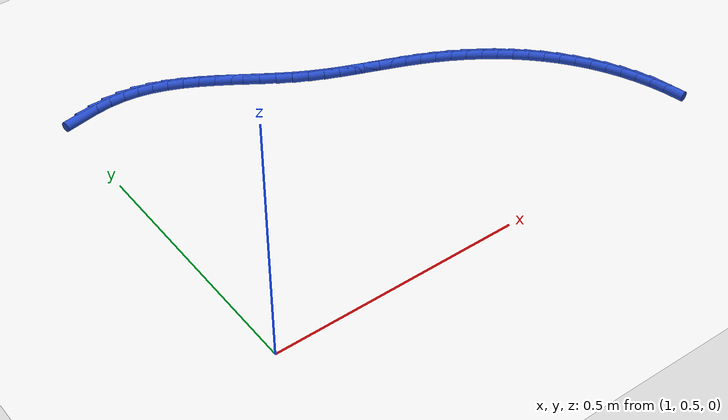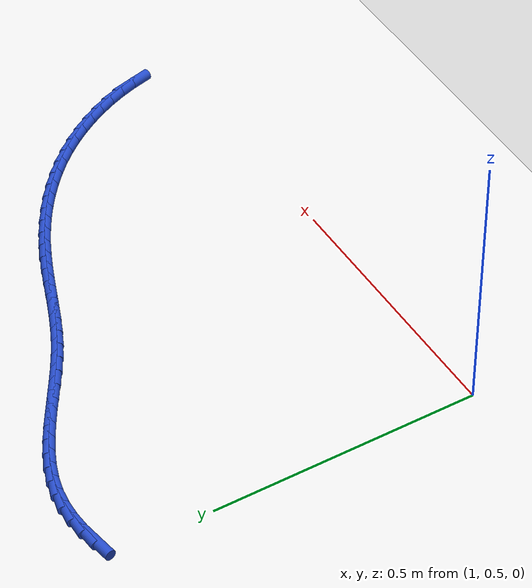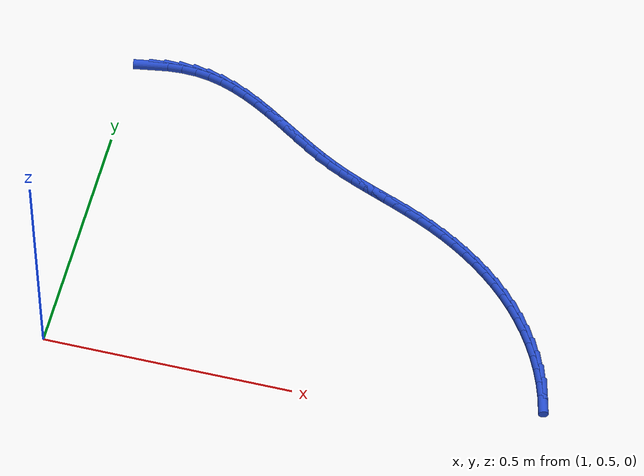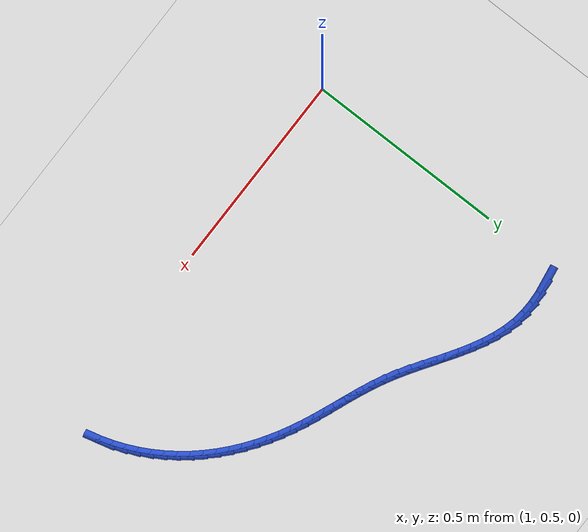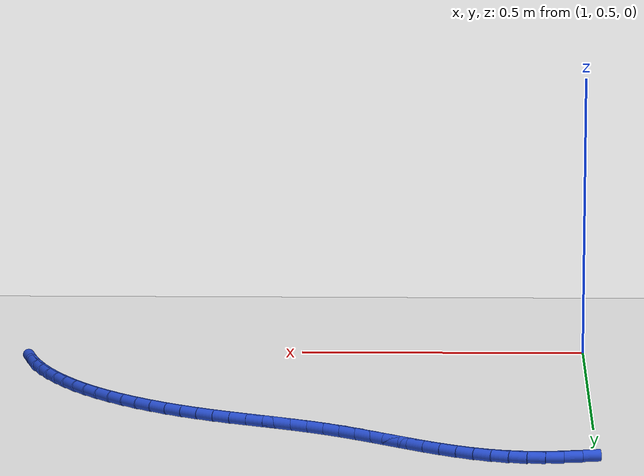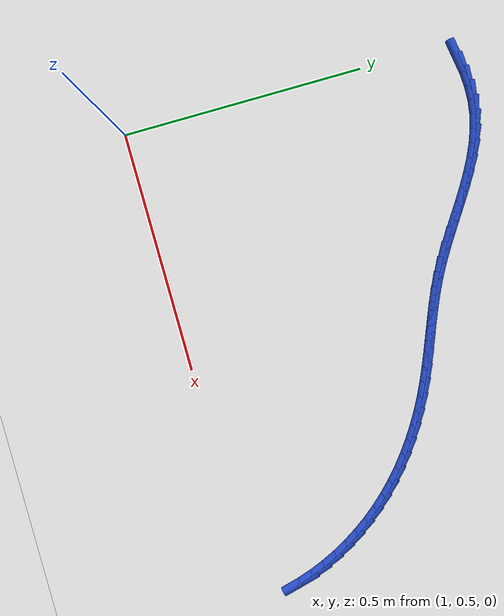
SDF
<sdf version="1.6">
 <world name="default">
  <model name="ground_plane">
   <static>1</static>
   <link name="link">
    <collision name="collision">
     <geometry><plane><normal>0 0 1</normal><size>100 100</size></plane></geometry>
     <surface><friction><ode><mu>100</mu><mu2>50</mu2></ode></friction></surface>
    </collision>
    <visual name="visual">
     <cast_shadows>0</cast_shadows>
     <geometry><plane><normal>0 0 1</normal><size>100 100</size></plane></geometry>
     <material>
      <script><uri>file://media/materials/scripts/gazebo.material</uri><name>Gazebo/WhiteGlow</name></script>
     </material>
    </visual>
   </link>
  </model>
  <model name="line">
   <link name="link_58">
    <pose>1.0345950340338022 1.1960302970071013 0.01 0 1.57 0.15751934321451455</pose>
    <collision name="collision">
     <geometry><cylinder><radius>0.01</radius><length>0.08</length></cylinder></geometry>
    </collision>
    <visual name="visual">
     <material>
      <script><name>Gazebo/Blue</name><uri>file://media/materials/scripts/gazebo.material</uri></script>
     </material>
     <geometry><cylinder><radius>0.01</radius><length>0.08</length></cylinder></geometry>
    </visual>
   </link>
   <link name="link_59">
    <pose>1.0651345947226571 1.2008810546248219 0.01 0 1.57 0.06669534960263131</pose>
    <collision name="collision">
     <geometry><cylinder><radius>0.01</radius><length>0.08</length></cylinder></geometry>
    </collision>
    <visual name="visual">
     <material>
      <script><name>Gazebo/Blue</name><uri>file://media/materials/scripts/gazebo.material</uri></script>
     </material>
     <geometry><cylinder><radius>0.01</radius><length>0.08</length></cylinder></geometry>
    </visual>
   </link>
   <link name="link_60">
    <pose>1.095475557222885 1.202907661582305 0.01 0 1.57 -0.03377364835423569</pose>
    <collision name="collision">
     <geometry><cylinder><radius>0.01</radius><length>0.08</length></cylinder></geometry>
    </collision>
    <visual name="visual">
     <material>
      <script><name>Gazebo/Blue</name><uri>file://media/materials/scripts/gazebo.material</uri></script>
     </material>
     <geometry><cylinder><radius>0.01</radius><length>0.08</length></cylinder></geometry>
    </visual>
   </link>
   <link name="link_61">
    <pose>1.1253937191837178 1.2018968317341083 0.01 0 1.57 -0.14431171110946056</pose>
    <collision name="collision">
     <geometry><cylinder><radius>0.01</radius><length>0.08</length></cylinder></geometry>
    </collision>
    <visual name="visual">
     <material>
      <script><name>Gazebo/Blue</name><uri>file://media/materials/scripts/gazebo.material</uri></script>
     </material>
     <geometry><cylinder><radius>0.01</radius><length>0.08</length></cylinder></geometry>
    </visual>
   </link>
   <link name="link_62">
    <pose>1.1546686072818466 1.1976425484047333 0.01 0 1.57 -0.2545763938784624</pose>
    <collision name="collision">
     <geometry><cylinder><radius>0.01</radius><length>0.08</length></cylinder></geometry>
    </collision>
    <visual name="visual">
     <material>
      <script><name>Gazebo/Blue</name><uri>file://media/materials/scripts/gazebo.material</uri></script>
     </material>
     <geometry><cylinder><radius>0.01</radius><length>0.08</length></cylinder></geometry>
    </visual>
   </link>
   <link name="link_63">
    <pose>1.1832202850649123 1.190212761407325 0.01 0 1.57 -0.3497358407447202</pose>
    <collision name="collision">
     <geometry><cylinder><radius>0.01</radius><length>0.08</length></cylinder></geometry>
    </collision>
    <visual name="visual">
     <material>
      <script><name>Gazebo/Blue</name><uri>file://media/materials/scripts/gazebo.material</uri></script>
     </material>
     <geometry><cylinder><radius>0.01</radius><length>0.08</length></cylinder></geometry>
    </visual>
   </link>
   <link name="link_64">
    <pose>1.2111488567032964 1.1800263967571685 0.01 0 1.57 -0.42779413349664697</pose>
    <collision name="collision">
     <geometry><cylinder><radius>0.01</radius><length>0.08</length></cylinder></geometry>
    </collision>
    <visual name="visual">
     <material>
      <script><name>Gazebo/Blue</name><uri>file://media/materials/scripts/gazebo.material</uri></script>
     </material>
     <geometry><cylinder><radius>0.01</radius><length>0.08</length></cylinder></geometry>
    </visual>
   </link>
   <link name="link_65">
    <pose>1.2385662084310867 1.1675253487525383 0.01 0 1.57 -0.4889259432721871</pose>
    <collision name="collision">
     <geometry><cylinder><radius>0.01</radius><length>0.08</length></cylinder></geometry>
    </collision>
    <visual name="visual">
     <material>
      <script><name>Gazebo/Blue</name><uri>file://media/materials/scripts/gazebo.material</uri></script>
     </material>
     <geometry><cylinder><radius>0.01</radius><length>0.08</length></cylinder></geometry>
    </visual>
   </link>
   <link name="link_66">
    <pose>1.265584226482372 1.1531515116917097 0.01 0 1.57 -0.5339686493828901</pose>
    <collision name="collision">
     <geometry><cylinder><radius>0.01</radius><length>0.08</length></cylinder></geometry>
    </collision>
    <visual name="visual">
     <material>
      <script><name>Gazebo/Blue</name><uri>file://media/materials/scripts/gazebo.material</uri></script>
     </material>
     <geometry><cylinder><radius>0.01</radius><length>0.08</length></cylinder></geometry>
    </visual>
   </link>
   <link name="link_67">
    <pose>1.2923147970912394 1.1373467798729577 0.01 0 1.57 -0.5639122370377647</pose>
    <collision name="collision">
     <geometry><cylinder><radius>0.01</radius><length>0.08</length></cylinder></geometry>
    </collision>
    <visual name="visual">
     <material>
      <script><name>Gazebo/Blue</name><uri>file://media/materials/scripts/gazebo.material</uri></script>
     </material>
     <geometry><cylinder><radius>0.01</radius><length>0.08</length></cylinder></geometry>
    </visual>
   </link>
   <link name="link_68">
    <pose>1.3188698064917777 1.1205530475945573 0.01 0 1.57 -0.5795918885365203</pose>
    <collision name="collision">
     <geometry><cylinder><radius>0.01</radius><length>0.08</length></cylinder></geometry>
    </collision>
    <visual name="visual">
     <material>
      <script><name>Gazebo/Blue</name><uri>file://media/materials/scripts/gazebo.material</uri></script>
     </material>
     <geometry><cylinder><radius>0.01</radius><length>0.08</length></cylinder></geometry>
    </visual>
   </link>
   <link name="link_69">
    <pose>1.3453611409180746 1.1032122091547836 0.01 0 1.57 -0.5815322048873945</pose>
    <collision name="collision">
     <geometry><cylinder><radius>0.01</radius><length>0.08</length></cylinder></geometry>
    </collision>
    <visual name="visual">
     <material>
      <script><name>Gazebo/Blue</name><uri>file://media/materials/scripts/gazebo.material</uri></script>
     </material>
     <geometry><cylinder><radius>0.01</radius><length>0.08</length></cylinder></geometry>
    </visual>
   </link>
   <link name="link_70">
    <pose>1.3719006866042183 1.0857661588519119 0.01 0 1.57 -0.5698868016549801</pose>
    <collision name="collision">
     <geometry><cylinder><radius>0.01</radius><length>0.08</length></cylinder></geometry>
    </collision>
    <visual name="visual">
     <material>
      <script><name>Gazebo/Blue</name><uri>file://media/materials/scripts/gazebo.material</uri></script>
     </material>
     <geometry><cylinder><radius>0.01</radius><length>0.08</length></cylinder></geometry>
    </visual>
   </link>
   <link name="link_71">
    <pose>1.3986003297842966 1.068656790984217 0.01 0 1.57 -0.5444394563425698</pose>
    <collision name="collision">
     <geometry><cylinder><radius>0.01</radius><length>0.08</length></cylinder></geometry>
    </collision>
    <visual name="visual">
     <material>
      <script><name>Gazebo/Blue</name><uri>file://media/materials/scripts/gazebo.material</uri></script>
     </material>
     <geometry><cylinder><radius>0.01</radius><length>0.08</length></cylinder></geometry>
    </visual>
   </link>
   <link name="link_72">
    <pose>1.4255719566923981 1.052325999849974 0.01 0 1.57 -0.5047392713394546</pose>
    <collision name="collision">
     <geometry><cylinder><radius>0.01</radius><length>0.08</length></cylinder></geometry>
    </collision>
    <visual name="visual">
     <material>
      <script><name>Gazebo/Blue</name><uri>file://media/materials/scripts/gazebo.material</uri></script>
     </material>
     <geometry><cylinder><radius>0.01</radius><length>0.08</length></cylinder></geometry>
    </visual>
   </link>
   <link name="link_73">
    <pose>1.4529267526491638 1.037213235554282 0.01 0 1.57 -0.4585980168633063</pose>
    <collision name="collision">
     <geometry><cylinder><radius>0.01</radius><length>0.08</length></cylinder></geometry>
    </collision>
    <visual name="visual">
     <material>
      <script><name>Gazebo/Blue</name><uri>file://media/materials/scripts/gazebo.material</uri></script>
     </material>
     <geometry><cylinder><radius>0.01</radius><length>0.08</length></cylinder></geometry>
    </visual>
   </link>
   <link name="link_74">
    <pose>1.4807020632485124 1.0235004576986149 0.01 0 1.57 -0.42192605350317947</pose>
    <collision name="collision">
     <geometry><cylinder><radius>0.01</radius><length>0.08</length></cylinder></geometry>
    </collision>
    <visual name="visual">
     <material>
      <script><name>Gazebo/Blue</name><uri>file://media/materials/scripts/gazebo.material</uri></script>
     </material>
     <geometry><cylinder><radius>0.01</radius><length>0.08</length></cylinder></geometry>
    </visual>
   </link>
   <link name="link_75">
    <pose>1.5087973780832349 1.010888900768964 0.01 0 1.57 -0.3969021513975742</pose>
    <collision name="collision">
     <geometry><cylinder><radius>0.01</radius><length>0.08</length></cylinder></geometry>
    </collision>
    <visual name="visual">
     <material>
      <script><name>Gazebo/Blue</name><uri>file://media/materials/scripts/gazebo.material</uri></script>
     </material>
     <geometry><cylinder><radius>0.01</radius><length>0.08</length></cylinder></geometry>
    </visual>
   </link>
   <link name="link_76">
    <pose>1.5370970962316524 0.9990271763023538 0.01 0 1.57 -0.3837778156022704</pose>
    <collision name="collision">
     <geometry><cylinder><radius>0.01</radius><length>0.08</length></cylinder></geometry>
    </collision>
    <visual name="visual">
     <material>
      <script><name>Gazebo/Blue</name><uri>file://media/materials/scripts/gazebo.material</uri></script>
     </material>
     <geometry><cylinder><radius>0.01</radius><length>0.08</length></cylinder></geometry>
    </visual>
   </link>
   <link name="link_77">
    <pose>1.5654856167720879 0.987563895835809 0.01 0 1.57 -0.38267886107966387</pose>
    <collision name="collision">
     <geometry><cylinder><radius>0.01</radius><length>0.08</length></cylinder></geometry>
    </collision>
    <visual name="visual">
     <material>
      <script><name>Gazebo/Blue</name><uri>file://media/materials/scripts/gazebo.material</uri></script>
     </material>
     <geometry><cylinder><radius>0.01</radius><length>0.08</length></cylinder></geometry>
    </visual>
   </link>
   <link name="link_78">
    <pose>1.5938473387828602 0.9761476709063533 0.01 0 1.57 -0.3936584936075167</pose>
    <collision name="collision">
     <geometry><cylinder><radius>0.01</radius><length>0.08</length></cylinder></geometry>
    </collision>
    <visual name="visual">
     <material>
      <script><name>Gazebo/Blue</name><uri>file://media/materials/scripts/gazebo.material</uri></script>
     </material>
     <geometry><cylinder><radius>0.01</radius><length>0.08</length></cylinder></geometry>
    </visual>
   </link>
   <link name="link_79">
    <pose>1.6220666613422914 0.9644271130510104 0.01 0 1.57 -0.4167009541719072</pose>
    <collision name="collision">
     <geometry><cylinder><radius>0.01</radius><length>0.08</length></cylinder></geometry>
    </collision>
    <visual name="visual">
     <material>
      <script><name>Gazebo/Blue</name><uri>file://media/materials/scripts/gazebo.material</uri></script>
     </material>
     <geometry><cylinder><radius>0.01</radius><length>0.08</length></cylinder></geometry>
    </visual>
   </link>
   <link name="link_80">
    <pose>1.6500279835287033 0.9520508338068054 0.01 0 1.57 -0.45145092223446137</pose>
    <collision name="collision">
     <geometry><cylinder><radius>0.01</radius><length>0.08</length></cylinder></geometry>
    </collision>
    <visual name="visual">
     <material>
      <script><name>Gazebo/Blue</name><uri>file://media/materials/scripts/gazebo.material</uri></script>
     </material>
     <geometry><cylinder><radius>0.01</radius><length>0.08</length></cylinder></geometry>
    </visual>
   </link>
   <link name="link_81">
    <pose>1.6776159340828787 0.9386749316962268 0.01 0 1.57 -0.4927703629924155</pose>
    <collision name="collision">
     <geometry><cylinder><radius>0.01</radius><length>0.08</length></cylinder></geometry>
    </collision>
    <visual name="visual">
     <material>
      <script><name>Gazebo/Blue</name><uri>file://media/materials/scripts/gazebo.material</uri></script>
     </material>
     <geometry><cylinder><radius>0.01</radius><length>0.08</length></cylinder></geometry>
    </visual>
   </link>
   <link name="link_82">
    <pose>1.7047202253148814 0.9241212293604488 0.01 0 1.57 -0.535922900961422</pose>
    <collision name="collision">
     <geometry><cylinder><radius>0.01</radius><length>0.08</length></cylinder></geometry>
    </collision>
    <visual name="visual">
     <material>
      <script><name>Gazebo/Blue</name><uri>file://media/materials/scripts/gazebo.material</uri></script>
     </material>
     <geometry><cylinder><radius>0.01</radius><length>0.08</length></cylinder></geometry>
    </visual>
   </link>
   <link name="link_83">
    <pose>1.7312355451231782 0.9083737533878852 0.01 0 1.57 -0.5808984180801068</pose>
    <collision name="collision">
     <geometry><cylinder><radius>0.01</radius><length>0.08</length></cylinder></geometry>
    </collision>
    <visual name="visual">
     <material>
      <script><name>Gazebo/Blue</name><uri>file://media/materials/scripts/gazebo.material</uri></script>
     </material>
     <geometry><cylinder><radius>0.01</radius><length>0.08</length></cylinder></geometry>
    </visual>
   </link>
   <link name="link_84">
    <pose>1.7570567894694027 0.8914233132163893 0.01 0 1.57 -0.6278737316190417</pose>
    <collision name="collision">
     <geometry><cylinder><radius>0.01</radius><length>0.08</length></cylinder></geometry>
    </collision>
    <visual name="visual">
     <material>
      <script><name>Gazebo/Blue</name><uri>file://media/materials/scripts/gazebo.material</uri></script>
     </material>
     <geometry><cylinder><radius>0.01</radius><length>0.08</length></cylinder></geometry>
    </visual>
   </link>
   <link name="link_85">
    <pose>1.7820788543151886 0.873260718283814 0.01 0 1.57 -0.677005048405355</pose>
    <collision name="collision">
     <geometry><cylinder><radius>0.01</radius><length>0.08</length></cylinder></geometry>
    </collision>
    <visual name="visual">
     <material>
      <script><name>Gazebo/Blue</name><uri>file://media/materials/scripts/gazebo.material</uri></script>
     </material>
     <geometry><cylinder><radius>0.01</radius><length>0.08</length></cylinder></geometry>
    </visual>
   </link>
   <link name="link_86">
    <pose>1.80619663562217 0.8538767780280131 0.01 0 1.57 -0.7284206997887859</pose>
    <collision name="collision">
     <geometry><cylinder><radius>0.01</radius><length>0.08</length></cylinder></geometry>
    </collision>
    <visual name="visual">
     <material>
      <script><name>Gazebo/Blue</name><uri>file://media/materials/scripts/gazebo.material</uri></script>
     </material>
     <geometry><cylinder><radius>0.01</radius><length>0.08</length></cylinder></geometry>
    </visual>
   </link>
   <link name="link_87">
    <pose>1.8293050293519801 0.8332623018868393 0.01 0 1.57 -0.7822121864013021</pose>
    <collision name="collision">
     <geometry><cylinder><radius>0.01</radius><length>0.08</length></cylinder></geometry>
    </collision>
    <visual name="visual">
     <material>
      <script><name>Gazebo/Blue</name><uri>file://media/materials/scripts/gazebo.material</uri></script>
     </material>
     <geometry><cylinder><radius>0.01</radius><length>0.08</length></cylinder></geometry>
    </visual>
   </link>
   <link name="link_88">
    <pose>1.8512989314662538 0.8114080992981452 0.01 0 1.57 -0.838423836945611</pose>
    <collision name="collision">
     <geometry><cylinder><radius>0.01</radius><length>0.08</length></cylinder></geometry>
    </collision>
    <visual name="visual">
     <material>
      <script><name>Gazebo/Blue</name><uri>file://media/materials/scripts/gazebo.material</uri></script>
     </material>
     <geometry><cylinder><radius>0.01</radius><length>0.08</length></cylinder></geometry>
    </visual>
   </link>
   <link name="link_89">
    <pose>1.8720732379266243 0.7883049796997851 0.01 0 1.57 -0.8968084459973062</pose>
    <collision name="collision">
     <geometry><cylinder><radius>0.01</radius><length>0.08</length></cylinder></geometry>
    </collision>
    <visual name="visual">
     <material>
      <script><name>Gazebo/Blue</name><uri>file://media/materials/scripts/gazebo.material</uri></script>
     </material>
     <geometry><cylinder><radius>0.01</radius><length>0.08</length></cylinder></geometry>
    </visual>
   </link>
   <link name="link_90">
    <pose>1.8915239523201701 0.763954016904576 0.01 0 1.57 -0.9555890569865575</pose>
    <collision name="collision">
     <geometry><cylinder><radius>0.01</radius><length>0.08</length></cylinder></geometry>
    </collision>
    <visual name="visual">
     <material>
      <script><name>Gazebo/Blue</name><uri>file://media/materials/scripts/gazebo.material</uri></script>
     </material>
     <geometry><cylinder><radius>0.01</radius><length>0.08</length></cylinder></geometry>
    </visual>
   </link>
   <link name="link_91">
    <pose>1.90955591987808 0.7384382203208998 0.01 0 1.57 -1.0142760520478078</pose>
    <collision name="collision">
     <geometry><cylinder><radius>0.01</radius><length>0.08</length></cylinder></geometry>
    </collision>
    <visual name="visual">
     <material>
      <script><name>Gazebo/Blue</name><uri>file://media/materials/scripts/gazebo.material</uri></script>
     </material>
     <geometry><cylinder><radius>0.01</radius><length>0.08</length></cylinder></geometry>
    </visual>
   </link>
   <link name="link_92">
    <pose>1.9260782205953082 0.7118798429510499 0.01 0 1.57 -1.0733169394948778</pose>
    <collision name="collision">
     <geometry><cylinder><radius>0.01</radius><length>0.08</length></cylinder></geometry>
    </collision>
    <visual name="visual">
     <material>
      <script><name>Gazebo/Blue</name><uri>file://media/materials/scripts/gazebo.material</uri></script>
     </material>
     <geometry><cylinder><radius>0.01</radius><length>0.08</length></cylinder></geometry>
    </visual>
   </link>
   <link name="link_93">
    <pose>1.9409999610129212 0.6844013838004184 0.01 0 1.57 -1.133159000432719</pose>
    <collision name="collision">
     <geometry><cylinder><radius>0.01</radius><length>0.08</length></cylinder></geometry>
    </collision>
    <visual name="visual">
     <material>
      <script><name>Gazebo/Blue</name><uri>file://media/materials/scripts/gazebo.material</uri></script>
     </material>
     <geometry><cylinder><radius>0.01</radius><length>0.08</length></cylinder></geometry>
    </visual>
   </link>
   <link name="link_94">
    <pose>1.9542302476719888 0.6561253418743968 0.01 0 1.57 -1.1942419018317</pose>
    <collision name="collision">
     <geometry><cylinder><radius>0.01</radius><length>0.08</length></cylinder></geometry>
    </collision>
    <visual name="visual">
     <material>
      <script><name>Gazebo/Blue</name><uri>file://media/materials/scripts/gazebo.material</uri></script>
     </material>
     <geometry><cylinder><radius>0.01</radius><length>0.08</length></cylinder></geometry>
    </visual>
   </link>
   <link name="link_95">
    <pose>1.9656781871135804 0.6271742161783778 0.01 0 1.57 -1.2569938903587312</pose>
    <collision name="collision">
     <geometry><cylinder><radius>0.01</radius><length>0.08</length></cylinder></geometry>
    </collision>
    <visual name="visual">
     <material>
      <script><name>Gazebo/Blue</name><uri>file://media/materials/scripts/gazebo.material</uri></script>
     </material>
     <geometry><cylinder><radius>0.01</radius><length>0.08</length></cylinder></geometry>
    </visual>
   </link>
   <link name="link_96">
    <pose>1.975252885878764 0.5976705057177523 0.01 0 1.57 -1.3218249147971985</pose>
    <collision name="collision">
     <geometry><cylinder><radius>0.01</radius><length>0.08</length></cylinder></geometry>
    </collision>
    <visual name="visual">
     <material>
      <script><name>Gazebo/Blue</name><uri>file://media/materials/scripts/gazebo.material</uri></script>
     </material>
     <geometry><cylinder><radius>0.01</radius><length>0.08</length></cylinder></geometry>
    </visual>
   </link>
  </model>
 </world>
</sdf>
